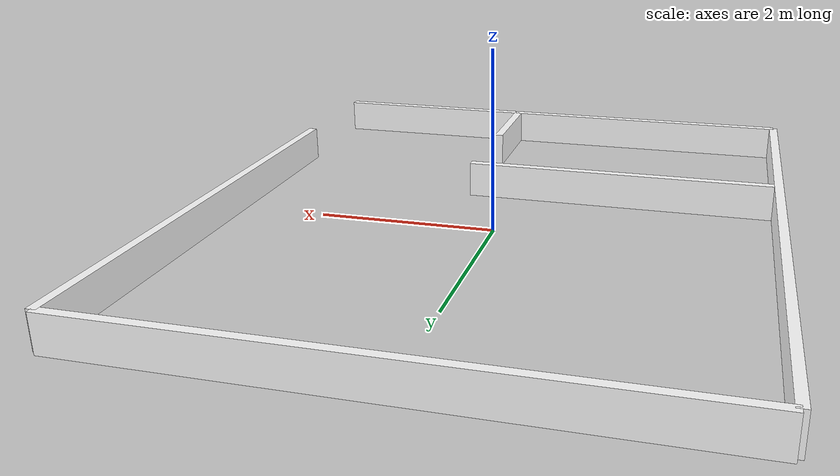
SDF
<?xml version="1.0" ?>
<sdf version="1.8">
  <model name="robot_cafe_arena_frame">
    <static>true</static>
    <link name="link">
      <inertial>
        <mass>1.0</mass>
      </inertial>

      <collision name="wall_front">
        <pose>-3.0 0.0 0.2 0.0 0.0 0.0</pose>
        <geometry>
          <box>
            <size>0.1 7.0 0.4</size>
          </box>
        </geometry>
      </collision>

      <visual name="wall_front_v">
        <pose>-3.0 0.0 0.2 0.0 0.0 0.0</pose>
        <geometry>
          <box>
            <size>0.1 7.0 0.4</size>
          </box>
        </geometry>

        <material>
          <diffuse>1.0 1.0 1.0 1.0</diffuse>
          <specular>1.0 1.0 1.0 1.0</specular>
        </material>
      </visual>

      <collision name="wall_side_left">
        <pose>0.0 3.5 0.2 0.0 0.0 1.57</pose>
        <geometry>
          <box>
            <size>0.1 6.0 0.4</size>
          </box>
        </geometry>
      </collision>

      <visual name="wall_side_left_v">
        <pose>0.0 3.5 0.2 0.0 0.0 1.57</pose>
        <geometry>
          <box>
            <size>0.1 6.0 0.4</size>
          </box>
        </geometry>

        <material>
          <diffuse>1.0 1.0 1.0 1.0</diffuse>
          <specular>1.0 1.0 1.0 1.0</specular>
        </material>
      </visual>

      <collision name="wall_side_right">
        <pose>0.0 -3.5 0.2 0.0 0.0 1.57</pose>
        <geometry>
          <box>
            <size>0.1 6.0 0.4</size>
          </box>
        </geometry>
      </collision>

      <visual name="wall_side_right_v">
        <pose>0.0 -3.5 0.2 0.0 0.0 1.57</pose>
        <geometry>
          <box>
            <size>0.1 6.0 0.4</size>
          </box>
        </geometry>

        <material>
          <diffuse>1.0 1.0 1.0 1.0</diffuse>
          <specular>1.0 1.0 1.0 1.0</specular>
        </material>
      </visual>

      <collision name="wall_back">
        <pose>3.0 0.75 0.2 0.0 0.0 0.0</pose>
        <geometry>
          <box>
            <size>0.1 5.5 0.4</size>
          </box>
        </geometry>
      </collision>

      <visual name="wall_back_v">
        <pose>3.0 0.75 0.2 0.0 0.0 0.0</pose>
        <geometry>
          <box>
            <size>0.1 5.5 0.4</size>
          </box>
        </geometry>

        <material>
          <diffuse>1.0 1.0 1.0 1.0</diffuse>
          <specular>1.0 1.0 1.0 1.0</specular>
        </material>
      </visual>

      <collision name="inside_wall_front">
        <pose>-1.2 -1.1 0.2 0.0 0.0 1.57</pose>
        <geometry>
          <box>
            <size>0.1 3.5 0.4</size>
          </box>
        </geometry>
      </collision>

      <visual name="inside_wall_front_v">
        <pose>-1.2 -1.1 0.2 0.0 0.0 1.57</pose>
        <geometry>
          <box>
            <size>0.1 3.5 0.4</size>
          </box>
        </geometry>

        <material>
          <diffuse>1.0 1.0 1.0 1.0</diffuse>
          <specular>1.0 1.0 1.0 1.0</specular>
        </material>
      </visual>

      <collision name="inside_wall_side">
        <pose>0.5 -2.9 0.2 0.0 0.0 0.0</pose>
        <geometry>
          <box>
            <size>0.1 1.2 0.4</size>
          </box>
        </geometry>
      </collision>

      <visual name="inside_wall_side_v">
        <pose>0.5 -2.9 0.2 0.0 0.0 0.0</pose>
        <geometry>
          <box>
            <size>0.1 1.2 0.4</size>
          </box>
        </geometry>

        <material>
          <diffuse>1.0 1.0 1.0 1.0</diffuse>
          <specular>1.0 1.0 1.0 1.0</specular>
        </material>
      </visual>
    </link>
  </model>
</sdf>
